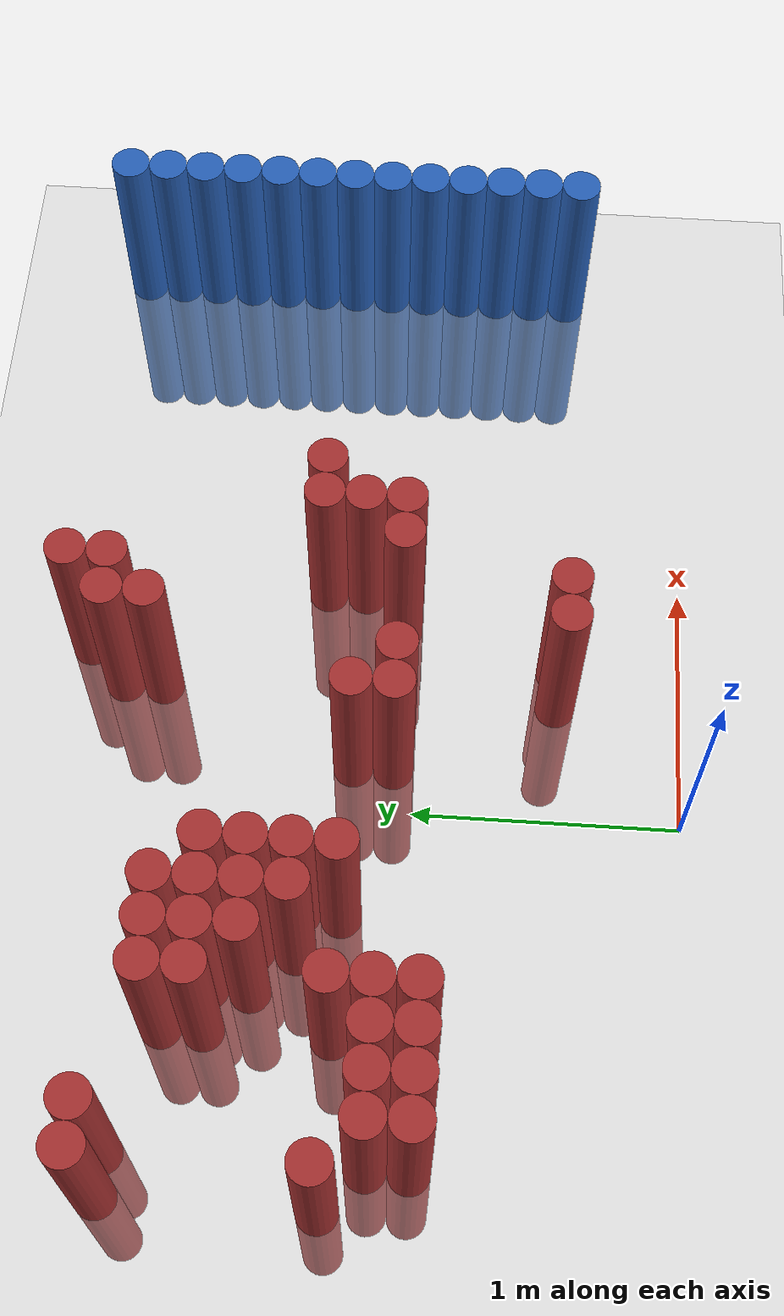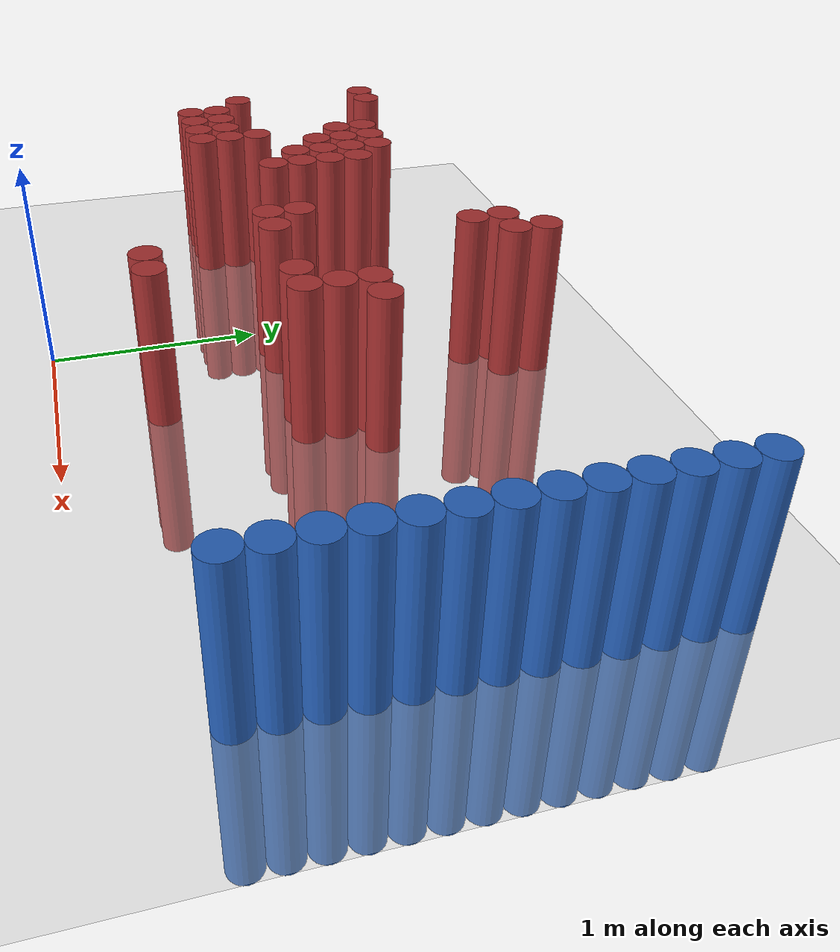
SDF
<sdf version="1.6">
 <world name="default">
  <model name="ground_plane">
   <static>1</static>
   <link name="link">
    <collision name="collision">
     <geometry><plane><normal>0 0 1</normal><size>100 100</size></plane></geometry>
     <surface><friction><ode><mu>100</mu><mu2>50</mu2></ode></friction></surface>
    </collision>
    <visual name="visual">
     <cast_shadows>0</cast_shadows>
     <geometry><plane><normal>0 0 1</normal><size>100 100</size></plane></geometry>
     <material>
      <script><uri>file://media/materials/scripts/gazebo.material</uri><name>Gazebo/Grey</name></script>
     </material>
    </visual>
   </link>
  </model>
  <model name="unit_cylinder_152">
   <static>1</static>
   <pose>-1.475000 1.225000 0.000000 0.000000 0.000000 0.000000</pose>
   <link name="link">
    <inertial>
     <mass>1</mass>
     <inertia><ixx>0.145833</ixx><ixy>0</ixy><ixz>0</ixz><iyy>0.145833</iyy><iyz>0</iyz><izz>0.125</izz></inertia>
    </inertial>
    <collision name="collision">
     <geometry><cylinder><radius>0.075000</radius><length>1.5</length></cylinder></geometry>
    </collision>
    <visual name="visual">
     <geometry><cylinder><radius>0.075000</radius><length>1.5</length></cylinder></geometry>
     <material>
      <ambient>0.648000 0.192000 0.192000 1</ambient>
      <diffuse>0.648000 0.192000 0.192000 1</diffuse>
     </material>
     <material>
      <script><name>Gazebo/Grey</name><uri>file://media/materials/scripts/gazebo.material</uri></script>
     </material>
    </visual>
   </link>
  </model>
  <model name="unit_cylinder_153">
   <static>1</static>
   <pose>-1.475000 1.975000 0.000000 0.000000 0.000000 0.000000</pose>
   <link name="link">
    <inertial>
     <mass>1</mass>
     <inertia><ixx>0.145833</ixx><ixy>0</ixy><ixz>0</ixz><iyy>0.145833</iyy><iyz>0</iyz><izz>0.125</izz></inertia>
    </inertial>
    <collision name="collision">
     <geometry><cylinder><radius>0.075000</radius><length>1.5</length></cylinder></geometry>
    </collision>
    <visual name="visual">
     <geometry><cylinder><radius>0.075000</radius><length>1.5</length></cylinder></geometry>
     <material>
      <ambient>0.648000 0.192000 0.192000 1</ambient>
      <diffuse>0.648000 0.192000 0.192000 1</diffuse>
     </material>
     <material>
      <script><name>Gazebo/Grey</name><uri>file://media/materials/scripts/gazebo.material</uri></script>
     </material>
    </visual>
   </link>
  </model>
  <model name="unit_cylinder_156">
   <static>1</static>
   <pose>-1.325000 0.925000 0.000000 0.000000 0.000000 0.000000</pose>
   <link name="link">
    <inertial>
     <mass>1</mass>
     <inertia><ixx>0.145833</ixx><ixy>0</ixy><ixz>0</ixz><iyy>0.145833</iyy><iyz>0</iyz><izz>0.125</izz></inertia>
    </inertial>
    <collision name="collision">
     <geometry><cylinder><radius>0.075000</radius><length>1.5</length></cylinder></geometry>
    </collision>
    <visual name="visual">
     <geometry><cylinder><radius>0.075000</radius><length>1.5</length></cylinder></geometry>
     <material>
      <ambient>0.648000 0.192000 0.192000 1</ambient>
      <diffuse>0.648000 0.192000 0.192000 1</diffuse>
     </material>
     <material>
      <script><name>Gazebo/Grey</name><uri>file://media/materials/scripts/gazebo.material</uri></script>
     </material>
    </visual>
   </link>
  </model>
  <model name="unit_cylinder_157">
   <static>1</static>
   <pose>-1.325000 1.075000 0.000000 0.000000 0.000000 0.000000</pose>
   <link name="link">
    <inertial>
     <mass>1</mass>
     <inertia><ixx>0.145833</ixx><ixy>0</ixy><ixz>0</ixz><iyy>0.145833</iyy><iyz>0</iyz><izz>0.125</izz></inertia>
    </inertial>
    <collision name="collision">
     <geometry><cylinder><radius>0.075000</radius><length>1.5</length></cylinder></geometry>
    </collision>
    <visual name="visual">
     <geometry><cylinder><radius>0.075000</radius><length>1.5</length></cylinder></geometry>
     <material>
      <ambient>0.648000 0.192000 0.192000 1</ambient>
      <diffuse>0.648000 0.192000 0.192000 1</diffuse>
     </material>
     <material>
      <script><name>Gazebo/Grey</name><uri>file://media/materials/scripts/gazebo.material</uri></script>
     </material>
    </visual>
   </link>
  </model>
  <model name="unit_cylinder_158">
   <static>1</static>
   <pose>-1.325000 1.975000 0.000000 0.000000 0.000000 0.000000</pose>
   <link name="link">
    <inertial>
     <mass>1</mass>
     <inertia><ixx>0.145833</ixx><ixy>0</ixy><ixz>0</ixz><iyy>0.145833</iyy><iyz>0</iyz><izz>0.125</izz></inertia>
    </inertial>
    <collision name="collision">
     <geometry><cylinder><radius>0.075000</radius><length>1.5</length></cylinder></geometry>
    </collision>
    <visual name="visual">
     <geometry><cylinder><radius>0.075000</radius><length>1.5</length></cylinder></geometry>
     <material>
      <ambient>0.648000 0.192000 0.192000 1</ambient>
      <diffuse>0.648000 0.192000 0.192000 1</diffuse>
     </material>
     <material>
      <script><name>Gazebo/Grey</name><uri>file://media/materials/scripts/gazebo.material</uri></script>
     </material>
    </visual>
   </link>
  </model>
  <model name="unit_cylinder_160">
   <static>1</static>
   <pose>-1.175000 0.925000 0.000000 0.000000 0.000000 0.000000</pose>
   <link name="link">
    <inertial>
     <mass>1</mass>
     <inertia><ixx>0.145833</ixx><ixy>0</ixy><ixz>0</ixz><iyy>0.145833</iyy><iyz>0</iyz><izz>0.125</izz></inertia>
    </inertial>
    <collision name="collision">
     <geometry><cylinder><radius>0.075000</radius><length>1.5</length></cylinder></geometry>
    </collision>
    <visual name="visual">
     <geometry><cylinder><radius>0.075000</radius><length>1.5</length></cylinder></geometry>
     <material>
      <ambient>0.648000 0.192000 0.192000 1</ambient>
      <diffuse>0.648000 0.192000 0.192000 1</diffuse>
     </material>
     <material>
      <script><name>Gazebo/Grey</name><uri>file://media/materials/scripts/gazebo.material</uri></script>
     </material>
    </visual>
   </link>
  </model>
  <model name="unit_cylinder_161">
   <static>1</static>
   <pose>-1.175000 1.075000 0.000000 0.000000 0.000000 0.000000</pose>
   <link name="link">
    <inertial>
     <mass>1</mass>
     <inertia><ixx>0.145833</ixx><ixy>0</ixy><ixz>0</ixz><iyy>0.145833</iyy><iyz>0</iyz><izz>0.125</izz></inertia>
    </inertial>
    <collision name="collision">
     <geometry><cylinder><radius>0.075000</radius><length>1.5</length></cylinder></geometry>
    </collision>
    <visual name="visual">
     <geometry><cylinder><radius>0.075000</radius><length>1.5</length></cylinder></geometry>
     <material>
      <ambient>0.648000 0.192000 0.192000 1</ambient>
      <diffuse>0.648000 0.192000 0.192000 1</diffuse>
     </material>
     <material>
      <script><name>Gazebo/Grey</name><uri>file://media/materials/scripts/gazebo.material</uri></script>
     </material>
    </visual>
   </link>
  </model>
  <model name="unit_cylinder_163">
   <static>1</static>
   <pose>-1.025000 0.925000 0.000000 0.000000 0.000000 0.000000</pose>
   <link name="link">
    <inertial>
     <mass>1</mass>
     <inertia><ixx>0.145833</ixx><ixy>0</ixy><ixz>0</ixz><iyy>0.145833</iyy><iyz>0</iyz><izz>0.125</izz></inertia>
    </inertial>
    <collision name="collision">
     <geometry><cylinder><radius>0.075000</radius><length>1.5</length></cylinder></geometry>
    </collision>
    <visual name="visual">
     <geometry><cylinder><radius>0.075000</radius><length>1.5</length></cylinder></geometry>
     <material>
      <ambient>0.648000 0.192000 0.192000 1</ambient>
      <diffuse>0.648000 0.192000 0.192000 1</diffuse>
     </material>
     <material>
      <script><name>Gazebo/Grey</name><uri>file://media/materials/scripts/gazebo.material</uri></script>
     </material>
    </visual>
   </link>
  </model>
  <model name="unit_cylinder_164">
   <static>1</static>
   <pose>-1.025000 1.075000 0.000000 0.000000 0.000000 0.000000</pose>
   <link name="link">
    <inertial>
     <mass>1</mass>
     <inertia><ixx>0.145833</ixx><ixy>0</ixy><ixz>0</ixz><iyy>0.145833</iyy><iyz>0</iyz><izz>0.125</izz></inertia>
    </inertial>
    <collision name="collision">
     <geometry><cylinder><radius>0.075000</radius><length>1.5</length></cylinder></geometry>
    </collision>
    <visual name="visual">
     <geometry><cylinder><radius>0.075000</radius><length>1.5</length></cylinder></geometry>
     <material>
      <ambient>0.648000 0.192000 0.192000 1</ambient>
      <diffuse>0.648000 0.192000 0.192000 1</diffuse>
     </material>
     <material>
      <script><name>Gazebo/Grey</name><uri>file://media/materials/scripts/gazebo.material</uri></script>
     </material>
    </visual>
   </link>
  </model>
  <model name="unit_cylinder_165">
   <static>1</static>
   <pose>-0.875000 0.925000 0.000000 0.000000 0.000000 0.000000</pose>
   <link name="link">
    <inertial>
     <mass>1</mass>
     <inertia><ixx>0.145833</ixx><ixy>0</ixy><ixz>0</ixz><iyy>0.145833</iyy><iyz>0</iyz><izz>0.125</izz></inertia>
    </inertial>
    <collision name="collision">
     <geometry><cylinder><radius>0.075000</radius><length>1.5</length></cylinder></geometry>
    </collision>
    <visual name="visual">
     <geometry><cylinder><radius>0.075000</radius><length>1.5</length></cylinder></geometry>
     <material>
      <ambient>0.648000 0.192000 0.192000 1</ambient>
      <diffuse>0.648000 0.192000 0.192000 1</diffuse>
     </material>
     <material>
      <script><name>Gazebo/Grey</name><uri>file://media/materials/scripts/gazebo.material</uri></script>
     </material>
    </visual>
   </link>
  </model>
  <model name="unit_cylinder_166">
   <static>1</static>
   <pose>-0.875000 1.075000 0.000000 0.000000 0.000000 0.000000</pose>
   <link name="link">
    <inertial>
     <mass>1</mass>
     <inertia><ixx>0.145833</ixx><ixy>0</ixy><ixz>0</ixz><iyy>0.145833</iyy><iyz>0</iyz><izz>0.125</izz></inertia>
    </inertial>
    <collision name="collision">
     <geometry><cylinder><radius>0.075000</radius><length>1.5</length></cylinder></geometry>
    </collision>
    <visual name="visual">
     <geometry><cylinder><radius>0.075000</radius><length>1.5</length></cylinder></geometry>
     <material>
      <ambient>0.648000 0.192000 0.192000 1</ambient>
      <diffuse>0.648000 0.192000 0.192000 1</diffuse>
     </material>
     <material>
      <script><name>Gazebo/Grey</name><uri>file://media/materials/scripts/gazebo.material</uri></script>
     </material>
    </visual>
   </link>
  </model>
  <model name="unit_cylinder_167">
   <static>1</static>
   <pose>-0.875000 1.225000 0.000000 0.000000 0.000000 0.000000</pose>
   <link name="link">
    <inertial>
     <mass>1</mass>
     <inertia><ixx>0.145833</ixx><ixy>0</ixy><ixz>0</ixz><iyy>0.145833</iyy><iyz>0</iyz><izz>0.125</izz></inertia>
    </inertial>
    <collision name="collision">
     <geometry><cylinder><radius>0.075000</radius><length>1.5</length></cylinder></geometry>
    </collision>
    <visual name="visual">
     <geometry><cylinder><radius>0.075000</radius><length>1.5</length></cylinder></geometry>
     <material>
      <ambient>0.648000 0.192000 0.192000 1</ambient>
      <diffuse>0.648000 0.192000 0.192000 1</diffuse>
     </material>
     <material>
      <script><name>Gazebo/Grey</name><uri>file://media/materials/scripts/gazebo.material</uri></script>
     </material>
    </visual>
   </link>
  </model>
  <model name="unit_cylinder_168">
   <static>1</static>
   <pose>-0.875000 1.675000 0.000000 0.000000 0.000000 0.000000</pose>
   <link name="link">
    <inertial>
     <mass>1</mass>
     <inertia><ixx>0.145833</ixx><ixy>0</ixy><ixz>0</ixz><iyy>0.145833</iyy><iyz>0</iyz><izz>0.125</izz></inertia>
    </inertial>
    <collision name="collision">
     <geometry><cylinder><radius>0.075000</radius><length>1.5</length></cylinder></geometry>
    </collision>
    <visual name="visual">
     <geometry><cylinder><radius>0.075000</radius><length>1.5</length></cylinder></geometry>
     <material>
      <ambient>0.648000 0.192000 0.192000 1</ambient>
      <diffuse>0.648000 0.192000 0.192000 1</diffuse>
     </material>
     <material>
      <script><name>Gazebo/Grey</name><uri>file://media/materials/scripts/gazebo.material</uri></script>
     </material>
    </visual>
   </link>
  </model>
  <model name="unit_cylinder_169">
   <static>1</static>
   <pose>-0.875000 1.825000 0.000000 0.000000 0.000000 0.000000</pose>
   <link name="link">
    <inertial>
     <mass>1</mass>
     <inertia><ixx>0.145833</ixx><ixy>0</ixy><ixz>0</ixz><iyy>0.145833</iyy><iyz>0</iyz><izz>0.125</izz></inertia>
    </inertial>
    <collision name="collision">
     <geometry><cylinder><radius>0.075000</radius><length>1.5</length></cylinder></geometry>
    </collision>
    <visual name="visual">
     <geometry><cylinder><radius>0.075000</radius><length>1.5</length></cylinder></geometry>
     <material>
      <ambient>0.648000 0.192000 0.192000 1</ambient>
      <diffuse>0.648000 0.192000 0.192000 1</diffuse>
     </material>
     <material>
      <script><name>Gazebo/Grey</name><uri>file://media/materials/scripts/gazebo.material</uri></script>
     </material>
    </visual>
   </link>
  </model>
  <model name="unit_cylinder_170">
   <static>1</static>
   <pose>-0.725000 1.525000 0.000000 0.000000 0.000000 0.000000</pose>
   <link name="link">
    <inertial>
     <mass>1</mass>
     <inertia><ixx>0.145833</ixx><ixy>0</ixy><ixz>0</ixz><iyy>0.145833</iyy><iyz>0</iyz><izz>0.125</izz></inertia>
    </inertial>
    <collision name="collision">
     <geometry><cylinder><radius>0.075000</radius><length>1.5</length></cylinder></geometry>
    </collision>
    <visual name="visual">
     <geometry><cylinder><radius>0.075000</radius><length>1.5</length></cylinder></geometry>
     <material>
      <ambient>0.648000 0.192000 0.192000 1</ambient>
      <diffuse>0.648000 0.192000 0.192000 1</diffuse>
     </material>
     <material>
      <script><name>Gazebo/Grey</name><uri>file://media/materials/scripts/gazebo.material</uri></script>
     </material>
    </visual>
   </link>
  </model>
  <model name="unit_cylinder_171">
   <static>1</static>
   <pose>-0.725000 1.675000 0.000000 0.000000 0.000000 0.000000</pose>
   <link name="link">
    <inertial>
     <mass>1</mass>
     <inertia><ixx>0.145833</ixx><ixy>0</ixy><ixz>0</ixz><iyy>0.145833</iyy><iyz>0</iyz><izz>0.125</izz></inertia>
    </inertial>
    <collision name="collision">
     <geometry><cylinder><radius>0.075000</radius><length>1.5</length></cylinder></geometry>
    </collision>
    <visual name="visual">
     <geometry><cylinder><radius>0.075000</radius><length>1.5</length></cylinder></geometry>
     <material>
      <ambient>0.648000 0.192000 0.192000 1</ambient>
      <diffuse>0.648000 0.192000 0.192000 1</diffuse>
     </material>
     <material>
      <script><name>Gazebo/Grey</name><uri>file://media/materials/scripts/gazebo.material</uri></script>
     </material>
    </visual>
   </link>
  </model>
  <model name="unit_cylinder_172">
   <static>1</static>
   <pose>-0.725000 1.825000 0.000000 0.000000 0.000000 0.000000</pose>
   <link name="link">
    <inertial>
     <mass>1</mass>
     <inertia><ixx>0.145833</ixx><ixy>0</ixy><ixz>0</ixz><iyy>0.145833</iyy><iyz>0</iyz><izz>0.125</izz></inertia>
    </inertial>
    <collision name="collision">
     <geometry><cylinder><radius>0.075000</radius><length>1.5</length></cylinder></geometry>
    </collision>
    <visual name="visual">
     <geometry><cylinder><radius>0.075000</radius><length>1.5</length></cylinder></geometry>
     <material>
      <ambient>0.648000 0.192000 0.192000 1</ambient>
      <diffuse>0.648000 0.192000 0.192000 1</diffuse>
     </material>
     <material>
      <script><name>Gazebo/Grey</name><uri>file://media/materials/scripts/gazebo.material</uri></script>
     </material>
    </visual>
   </link>
  </model>
  <model name="unit_cylinder_173">
   <static>1</static>
   <pose>-0.575000 1.375000 0.000000 0.000000 0.000000 0.000000</pose>
   <link name="link">
    <inertial>
     <mass>1</mass>
     <inertia><ixx>0.145833</ixx><ixy>0</ixy><ixz>0</ixz><iyy>0.145833</iyy><iyz>0</iyz><izz>0.125</izz></inertia>
    </inertial>
    <collision name="collision">
     <geometry><cylinder><radius>0.075000</radius><length>1.5</length></cylinder></geometry>
    </collision>
    <visual name="visual">
     <geometry><cylinder><radius>0.075000</radius><length>1.5</length></cylinder></geometry>
     <material>
      <ambient>0.648000 0.192000 0.192000 1</ambient>
      <diffuse>0.648000 0.192000 0.192000 1</diffuse>
     </material>
     <material>
      <script><name>Gazebo/Grey</name><uri>file://media/materials/scripts/gazebo.material</uri></script>
     </material>
    </visual>
   </link>
  </model>
  <model name="unit_cylinder_174">
   <static>1</static>
   <pose>-0.575000 1.525000 0.000000 0.000000 0.000000 0.000000</pose>
   <link name="link">
    <inertial>
     <mass>1</mass>
     <inertia><ixx>0.145833</ixx><ixy>0</ixy><ixz>0</ixz><iyy>0.145833</iyy><iyz>0</iyz><izz>0.125</izz></inertia>
    </inertial>
    <collision name="collision">
     <geometry><cylinder><radius>0.075000</radius><length>1.5</length></cylinder></geometry>
    </collision>
    <visual name="visual">
     <geometry><cylinder><radius>0.075000</radius><length>1.5</length></cylinder></geometry>
     <material>
      <ambient>0.648000 0.192000 0.192000 1</ambient>
      <diffuse>0.648000 0.192000 0.192000 1</diffuse>
     </material>
     <material>
      <script><name>Gazebo/Grey</name><uri>file://media/materials/scripts/gazebo.material</uri></script>
     </material>
    </visual>
   </link>
  </model>
  <model name="unit_cylinder_175">
   <static>1</static>
   <pose>-0.575000 1.675000 0.000000 0.000000 0.000000 0.000000</pose>
   <link name="link">
    <inertial>
     <mass>1</mass>
     <inertia><ixx>0.145833</ixx><ixy>0</ixy><ixz>0</ixz><iyy>0.145833</iyy><iyz>0</iyz><izz>0.125</izz></inertia>
    </inertial>
    <collision name="collision">
     <geometry><cylinder><radius>0.075000</radius><length>1.5</length></cylinder></geometry>
    </collision>
    <visual name="visual">
     <geometry><cylinder><radius>0.075000</radius><length>1.5</length></cylinder></geometry>
     <material>
      <ambient>0.648000 0.192000 0.192000 1</ambient>
      <diffuse>0.648000 0.192000 0.192000 1</diffuse>
     </material>
     <material>
      <script><name>Gazebo/Grey</name><uri>file://media/materials/scripts/gazebo.material</uri></script>
     </material>
    </visual>
   </link>
  </model>
  <model name="unit_cylinder_176">
   <static>1</static>
   <pose>-0.575000 1.825000 0.000000 0.000000 0.000000 0.000000</pose>
   <link name="link">
    <inertial>
     <mass>1</mass>
     <inertia><ixx>0.145833</ixx><ixy>0</ixy><ixz>0</ixz><iyy>0.145833</iyy><iyz>0</iyz><izz>0.125</izz></inertia>
    </inertial>
    <collision name="collision">
     <geometry><cylinder><radius>0.075000</radius><length>1.5</length></cylinder></geometry>
    </collision>
    <visual name="visual">
     <geometry><cylinder><radius>0.075000</radius><length>1.5</length></cylinder></geometry>
     <material>
      <ambient>0.648000 0.192000 0.192000 1</ambient>
      <diffuse>0.648000 0.192000 0.192000 1</diffuse>
     </material>
     <material>
      <script><name>Gazebo/Grey</name><uri>file://media/materials/scripts/gazebo.material</uri></script>
     </material>
    </visual>
   </link>
  </model>
  <model name="unit_cylinder_181">
   <static>1</static>
   <pose>-0.425000 1.225000 0.000000 0.000000 0.000000 0.000000</pose>
   <link name="link">
    <inertial>
     <mass>1</mass>
     <inertia><ixx>0.145833</ixx><ixy>0</ixy><ixz>0</ixz><iyy>0.145833</iyy><iyz>0</iyz><izz>0.125</izz></inertia>
    </inertial>
    <collision name="collision">
     <geometry><cylinder><radius>0.075000</radius><length>1.5</length></cylinder></geometry>
    </collision>
    <visual name="visual">
     <geometry><cylinder><radius>0.075000</radius><length>1.5</length></cylinder></geometry>
     <material>
      <ambient>0.648000 0.192000 0.192000 1</ambient>
      <diffuse>0.648000 0.192000 0.192000 1</diffuse>
     </material>
     <material>
      <script><name>Gazebo/Grey</name><uri>file://media/materials/scripts/gazebo.material</uri></script>
     </material>
    </visual>
   </link>
  </model>
  <model name="unit_cylinder_182">
   <static>1</static>
   <pose>-0.425000 1.375000 0.000000 0.000000 0.000000 0.000000</pose>
   <link name="link">
    <inertial>
     <mass>1</mass>
     <inertia><ixx>0.145833</ixx><ixy>0</ixy><ixz>0</ixz><iyy>0.145833</iyy><iyz>0</iyz><izz>0.125</izz></inertia>
    </inertial>
    <collision name="collision">
     <geometry><cylinder><radius>0.075000</radius><length>1.5</length></cylinder></geometry>
    </collision>
    <visual name="visual">
     <geometry><cylinder><radius>0.075000</radius><length>1.5</length></cylinder></geometry>
     <material>
      <ambient>0.648000 0.192000 0.192000 1</ambient>
      <diffuse>0.648000 0.192000 0.192000 1</diffuse>
     </material>
     <material>
      <script><name>Gazebo/Grey</name><uri>file://media/materials/scripts/gazebo.material</uri></script>
     </material>
    </visual>
   </link>
  </model>
  <model name="unit_cylinder_183">
   <static>1</static>
   <pose>-0.425000 1.525000 0.000000 0.000000 0.000000 0.000000</pose>
   <link name="link">
    <inertial>
     <mass>1</mass>
     <inertia><ixx>0.145833</ixx><ixy>0</ixy><ixz>0</ixz><iyy>0.145833</iyy><iyz>0</iyz><izz>0.125</izz></inertia>
    </inertial>
    <collision name="collision">
     <geometry><cylinder><radius>0.075000</radius><length>1.5</length></cylinder></geometry>
    </collision>
    <visual name="visual">
     <geometry><cylinder><radius>0.075000</radius><length>1.5</length></cylinder></geometry>
     <material>
      <ambient>0.648000 0.192000 0.192000 1</ambient>
      <diffuse>0.648000 0.192000 0.192000 1</diffuse>
     </material>
     <material>
      <script><name>Gazebo/Grey</name><uri>file://media/materials/scripts/gazebo.material</uri></script>
     </material>
    </visual>
   </link>
  </model>
  <model name="unit_cylinder_184">
   <static>1</static>
   <pose>-0.425000 1.675000 0.000000 0.000000 0.000000 0.000000</pose>
   <link name="link">
    <inertial>
     <mass>1</mass>
     <inertia><ixx>0.145833</ixx><ixy>0</ixy><ixz>0</ixz><iyy>0.145833</iyy><iyz>0</iyz><izz>0.125</izz></inertia>
    </inertial>
    <collision name="collision">
     <geometry><cylinder><radius>0.075000</radius><length>1.5</length></cylinder></geometry>
    </collision>
    <visual name="visual">
     <geometry><cylinder><radius>0.075000</radius><length>1.5</length></cylinder></geometry>
     <material>
      <ambient>0.648000 0.192000 0.192000 1</ambient>
      <diffuse>0.648000 0.192000 0.192000 1</diffuse>
     </material>
     <material>
      <script><name>Gazebo/Grey</name><uri>file://media/materials/scripts/gazebo.material</uri></script>
     </material>
    </visual>
   </link>
  </model>
  <model name="unit_cylinder_195">
   <static>1</static>
   <pose>0.175000 1.075000 0.000000 0.000000 0.000000 0.000000</pose>
   <link name="link">
    <inertial>
     <mass>1</mass>
     <inertia><ixx>0.145833</ixx><ixy>0</ixy><ixz>0</ixz><iyy>0.145833</iyy><iyz>0</iyz><izz>0.125</izz></inertia>
    </inertial>
    <collision name="collision">
     <geometry><cylinder><radius>0.075000</radius><length>1.5</length></cylinder></geometry>
    </collision>
    <visual name="visual">
     <geometry><cylinder><radius>0.075000</radius><length>1.5</length></cylinder></geometry>
     <material>
      <ambient>0.648000 0.192000 0.192000 1</ambient>
      <diffuse>0.648000 0.192000 0.192000 1</diffuse>
     </material>
     <material>
      <script><name>Gazebo/Grey</name><uri>file://media/materials/scripts/gazebo.material</uri></script>
     </material>
    </visual>
   </link>
  </model>
  <model name="unit_cylinder_196">
   <static>1</static>
   <pose>0.175000 1.225000 0.000000 0.000000 0.000000 0.000000</pose>
   <link name="link">
    <inertial>
     <mass>1</mass>
     <inertia><ixx>0.145833</ixx><ixy>0</ixy><ixz>0</ixz><iyy>0.145833</iyy><iyz>0</iyz><izz>0.125</izz></inertia>
    </inertial>
    <collision name="collision">
     <geometry><cylinder><radius>0.075000</radius><length>1.5</length></cylinder></geometry>
    </collision>
    <visual name="visual">
     <geometry><cylinder><radius>0.075000</radius><length>1.5</length></cylinder></geometry>
     <material>
      <ambient>0.648000 0.192000 0.192000 1</ambient>
      <diffuse>0.648000 0.192000 0.192000 1</diffuse>
     </material>
     <material>
      <script><name>Gazebo/Grey</name><uri>file://media/materials/scripts/gazebo.material</uri></script>
     </material>
    </visual>
   </link>
  </model>
  <model name="unit_cylinder_199">
   <static>1</static>
   <pose>0.325000 1.075000 0.000000 0.000000 0.000000 0.000000</pose>
   <link name="link">
    <inertial>
     <mass>1</mass>
     <inertia><ixx>0.145833</ixx><ixy>0</ixy><ixz>0</ixz><iyy>0.145833</iyy><iyz>0</iyz><izz>0.125</izz></inertia>
    </inertial>
    <collision name="collision">
     <geometry><cylinder><radius>0.075000</radius><length>1.5</length></cylinder></geometry>
    </collision>
    <visual name="visual">
     <geometry><cylinder><radius>0.075000</radius><length>1.5</length></cylinder></geometry>
     <material>
      <ambient>0.648000 0.192000 0.192000 1</ambient>
      <diffuse>0.648000 0.192000 0.192000 1</diffuse>
     </material>
     <material>
      <script><name>Gazebo/Grey</name><uri>file://media/materials/scripts/gazebo.material</uri></script>
     </material>
    </visual>
   </link>
  </model>
  <model name="unit_cylinder_201">
   <static>1</static>
   <pose>0.475000 0.475000 0.000000 0.000000 0.000000 0.000000</pose>
   <link name="link">
    <inertial>
     <mass>1</mass>
     <inertia><ixx>0.145833</ixx><ixy>0</ixy><ixz>0</ixz><iyy>0.145833</iyy><iyz>0</iyz><izz>0.125</izz></inertia>
    </inertial>
    <collision name="collision">
     <geometry><cylinder><radius>0.075000</radius><length>1.5</length></cylinder></geometry>
    </collision>
    <visual name="visual">
     <geometry><cylinder><radius>0.075000</radius><length>1.5</length></cylinder></geometry>
     <material>
      <ambient>0.648000 0.192000 0.192000 1</ambient>
      <diffuse>0.648000 0.192000 0.192000 1</diffuse>
     </material>
     <material>
      <script><name>Gazebo/Grey</name><uri>file://media/materials/scripts/gazebo.material</uri></script>
     </material>
    </visual>
   </link>
  </model>
  <model name="unit_cylinder_202">
   <static>1</static>
   <pose>0.475000 1.975000 0.000000 0.000000 0.000000 0.000000</pose>
   <link name="link">
    <inertial>
     <mass>1</mass>
     <inertia><ixx>0.145833</ixx><ixy>0</ixy><ixz>0</ixz><iyy>0.145833</iyy><iyz>0</iyz><izz>0.125</izz></inertia>
    </inertial>
    <collision name="collision">
     <geometry><cylinder><radius>0.075000</radius><length>1.5</length></cylinder></geometry>
    </collision>
    <visual name="visual">
     <geometry><cylinder><radius>0.075000</radius><length>1.5</length></cylinder></geometry>
     <material>
      <ambient>0.648000 0.192000 0.192000 1</ambient>
      <diffuse>0.648000 0.192000 0.192000 1</diffuse>
     </material>
     <material>
      <script><name>Gazebo/Grey</name><uri>file://media/materials/scripts/gazebo.material</uri></script>
     </material>
    </visual>
   </link>
  </model>
  <model name="unit_cylinder_203">
   <static>1</static>
   <pose>0.475000 2.125000 0.000000 0.000000 0.000000 0.000000</pose>
   <link name="link">
    <inertial>
     <mass>1</mass>
     <inertia><ixx>0.145833</ixx><ixy>0</ixy><ixz>0</ixz><iyy>0.145833</iyy><iyz>0</iyz><izz>0.125</izz></inertia>
    </inertial>
    <collision name="collision">
     <geometry><cylinder><radius>0.075000</radius><length>1.5</length></cylinder></geometry>
    </collision>
    <visual name="visual">
     <geometry><cylinder><radius>0.075000</radius><length>1.5</length></cylinder></geometry>
     <material>
      <ambient>0.648000 0.192000 0.192000 1</ambient>
      <diffuse>0.648000 0.192000 0.192000 1</diffuse>
     </material>
     <material>
      <script><name>Gazebo/Grey</name><uri>file://media/materials/scripts/gazebo.material</uri></script>
     </material>
    </visual>
   </link>
  </model>
  <model name="unit_cylinder_205">
   <static>1</static>
   <pose>0.625000 0.475000 0.000000 0.000000 0.000000 0.000000</pose>
   <link name="link">
    <inertial>
     <mass>1</mass>
     <inertia><ixx>0.145833</ixx><ixy>0</ixy><ixz>0</ixz><iyy>0.145833</iyy><iyz>0</iyz><izz>0.125</izz></inertia>
    </inertial>
    <collision name="collision">
     <geometry><cylinder><radius>0.075000</radius><length>1.5</length></cylinder></geometry>
    </collision>
    <visual name="visual">
     <geometry><cylinder><radius>0.075000</radius><length>1.5</length></cylinder></geometry>
     <material>
      <ambient>0.648000 0.192000 0.192000 1</ambient>
      <diffuse>0.648000 0.192000 0.192000 1</diffuse>
     </material>
     <material>
      <script><name>Gazebo/Grey</name><uri>file://media/materials/scripts/gazebo.material</uri></script>
     </material>
    </visual>
   </link>
  </model>
  <model name="unit_cylinder_206">
   <static>1</static>
   <pose>0.625000 2.125000 0.000000 0.000000 0.000000 0.000000</pose>
   <link name="link">
    <inertial>
     <mass>1</mass>
     <inertia><ixx>0.145833</ixx><ixy>0</ixy><ixz>0</ixz><iyy>0.145833</iyy><iyz>0</iyz><izz>0.125</izz></inertia>
    </inertial>
    <collision name="collision">
     <geometry><cylinder><radius>0.075000</radius><length>1.5</length></cylinder></geometry>
    </collision>
    <visual name="visual">
     <geometry><cylinder><radius>0.075000</radius><length>1.5</length></cylinder></geometry>
     <material>
      <ambient>0.648000 0.192000 0.192000 1</ambient>
      <diffuse>0.648000 0.192000 0.192000 1</diffuse>
     </material>
     <material>
      <script><name>Gazebo/Grey</name><uri>file://media/materials/scripts/gazebo.material</uri></script>
     </material>
    </visual>
   </link>
  </model>
  <model name="unit_cylinder_207">
   <static>1</static>
   <pose>0.625000 2.275000 0.000000 0.000000 0.000000 0.000000</pose>
   <link name="link">
    <inertial>
     <mass>1</mass>
     <inertia><ixx>0.145833</ixx><ixy>0</ixy><ixz>0</ixz><iyy>0.145833</iyy><iyz>0</iyz><izz>0.125</izz></inertia>
    </inertial>
    <collision name="collision">
     <geometry><cylinder><radius>0.075000</radius><length>1.5</length></cylinder></geometry>
    </collision>
    <visual name="visual">
     <geometry><cylinder><radius>0.075000</radius><length>1.5</length></cylinder></geometry>
     <material>
      <ambient>0.648000 0.192000 0.192000 1</ambient>
      <diffuse>0.648000 0.192000 0.192000 1</diffuse>
     </material>
     <material>
      <script><name>Gazebo/Grey</name><uri>file://media/materials/scripts/gazebo.material</uri></script>
     </material>
    </visual>
   </link>
  </model>
  <model name="unit_cylinder_212">
   <static>1</static>
   <pose>0.775000 1.075000 0.000000 0.000000 0.000000 0.000000</pose>
   <link name="link">
    <inertial>
     <mass>1</mass>
     <inertia><ixx>0.145833</ixx><ixy>0</ixy><ixz>0</ixz><iyy>0.145833</iyy><iyz>0</iyz><izz>0.125</izz></inertia>
    </inertial>
    <collision name="collision">
     <geometry><cylinder><radius>0.075000</radius><length>1.5</length></cylinder></geometry>
    </collision>
    <visual name="visual">
     <geometry><cylinder><radius>0.075000</radius><length>1.5</length></cylinder></geometry>
     <material>
      <ambient>0.648000 0.192000 0.192000 1</ambient>
      <diffuse>0.648000 0.192000 0.192000 1</diffuse>
     </material>
     <material>
      <script><name>Gazebo/Grey</name><uri>file://media/materials/scripts/gazebo.material</uri></script>
     </material>
    </visual>
   </link>
  </model>
  <model name="unit_cylinder_217">
   <static>1</static>
   <pose>0.925000 1.075000 0.000000 0.000000 0.000000 0.000000</pose>
   <link name="link">
    <inertial>
     <mass>1</mass>
     <inertia><ixx>0.145833</ixx><ixy>0</ixy><ixz>0</ixz><iyy>0.145833</iyy><iyz>0</iyz><izz>0.125</izz></inertia>
    </inertial>
    <collision name="collision">
     <geometry><cylinder><radius>0.075000</radius><length>1.5</length></cylinder></geometry>
    </collision>
    <visual name="visual">
     <geometry><cylinder><radius>0.075000</radius><length>1.5</length></cylinder></geometry>
     <material>
      <ambient>0.648000 0.192000 0.192000 1</ambient>
      <diffuse>0.648000 0.192000 0.192000 1</diffuse>
     </material>
     <material>
      <script><name>Gazebo/Grey</name><uri>file://media/materials/scripts/gazebo.material</uri></script>
     </material>
    </visual>
   </link>
  </model>
  <model name="unit_cylinder_218">
   <static>1</static>
   <pose>0.925000 1.225000 0.000000 0.000000 0.000000 0.000000</pose>
   <link name="link">
    <inertial>
     <mass>1</mass>
     <inertia><ixx>0.145833</ixx><ixy>0</ixy><ixz>0</ixz><iyy>0.145833</iyy><iyz>0</iyz><izz>0.125</izz></inertia>
    </inertial>
    <collision name="collision">
     <geometry><cylinder><radius>0.075000</radius><length>1.5</length></cylinder></geometry>
    </collision>
    <visual name="visual">
     <geometry><cylinder><radius>0.075000</radius><length>1.5</length></cylinder></geometry>
     <material>
      <ambient>0.648000 0.192000 0.192000 1</ambient>
      <diffuse>0.648000 0.192000 0.192000 1</diffuse>
     </material>
     <material>
      <script><name>Gazebo/Grey</name><uri>file://media/materials/scripts/gazebo.material</uri></script>
     </material>
    </visual>
   </link>
  </model>
  <model name="unit_cylinder_219">
   <static>1</static>
   <pose>0.925000 1.375000 0.000000 0.000000 0.000000 0.000000</pose>
   <link name="link">
    <inertial>
     <mass>1</mass>
     <inertia><ixx>0.145833</ixx><ixy>0</ixy><ixz>0</ixz><iyy>0.145833</iyy><iyz>0</iyz><izz>0.125</izz></inertia>
    </inertial>
    <collision name="collision">
     <geometry><cylinder><radius>0.075000</radius><length>1.5</length></cylinder></geometry>
    </collision>
    <visual name="visual">
     <geometry><cylinder><radius>0.075000</radius><length>1.5</length></cylinder></geometry>
     <material>
      <ambient>0.648000 0.192000 0.192000 1</ambient>
      <diffuse>0.648000 0.192000 0.192000 1</diffuse>
     </material>
     <material>
      <script><name>Gazebo/Grey</name><uri>file://media/materials/scripts/gazebo.material</uri></script>
     </material>
    </visual>
   </link>
  </model>
  <model name="unit_cylinder_225">
   <static>1</static>
   <pose>1.075000 1.375000 0.000000 0.000000 0.000000 0.000000</pose>
   <link name="link">
    <inertial>
     <mass>1</mass>
     <inertia><ixx>0.145833</ixx><ixy>0</ixy><ixz>0</ixz><iyy>0.145833</iyy><iyz>0</iyz><izz>0.125</izz></inertia>
    </inertial>
    <collision name="collision">
     <geometry><cylinder><radius>0.075000</radius><length>1.5</length></cylinder></geometry>
    </collision>
    <visual name="visual">
     <geometry><cylinder><radius>0.075000</radius><length>1.5</length></cylinder></geometry>
     <material>
      <ambient>0.648000 0.192000 0.192000 1</ambient>
      <diffuse>0.648000 0.192000 0.192000 1</diffuse>
     </material>
     <material>
      <script><name>Gazebo/Grey</name><uri>file://media/materials/scripts/gazebo.material</uri></script>
     </material>
    </visual>
   </link>
  </model>
  <model name="unit_cylinder_234">
   <static>1</static>
   <pose>2.425000 0.475000 0.000000 0.000000 0.000000 0.000000</pose>
   <link name="link">
    <inertial>
     <mass>1</mass>
     <inertia><ixx>0.145833</ixx><ixy>0</ixy><ixz>0</ixz><iyy>0.145833</iyy><iyz>0</iyz><izz>0.125</izz></inertia>
    </inertial>
    <collision name="collision">
     <geometry><cylinder><radius>0.075000</radius><length>1.5</length></cylinder></geometry>
    </collision>
    <visual name="visual">
     <geometry><cylinder><radius>0.075000</radius><length>1.5</length></cylinder></geometry>
     <material>
      <ambient>0.152000 0.379000 0.720000 1</ambient>
      <diffuse>0.152000 0.379000 0.720000 1</diffuse>
     </material>
     <material>
      <script><name>Gazebo/Grey</name><uri>file://media/materials/scripts/gazebo.material</uri></script>
     </material>
    </visual>
   </link>
  </model>
  <model name="unit_cylinder_235">
   <static>1</static>
   <pose>2.425000 0.625000 0.000000 0.000000 0.000000 0.000000</pose>
   <link name="link">
    <inertial>
     <mass>1</mass>
     <inertia><ixx>0.145833</ixx><ixy>0</ixy><ixz>0</ixz><iyy>0.145833</iyy><iyz>0</iyz><izz>0.125</izz></inertia>
    </inertial>
    <collision name="collision">
     <geometry><cylinder><radius>0.075000</radius><length>1.5</length></cylinder></geometry>
    </collision>
    <visual name="visual">
     <geometry><cylinder><radius>0.075000</radius><length>1.5</length></cylinder></geometry>
     <material>
      <ambient>0.152000 0.379000 0.720000 1</ambient>
      <diffuse>0.152000 0.379000 0.720000 1</diffuse>
     </material>
     <material>
      <script><name>Gazebo/Grey</name><uri>file://media/materials/scripts/gazebo.material</uri></script>
     </material>
    </visual>
   </link>
  </model>
  <model name="unit_cylinder_236">
   <static>1</static>
   <pose>2.425000 0.775000 0.000000 0.000000 0.000000 0.000000</pose>
   <link name="link">
    <inertial>
     <mass>1</mass>
     <inertia><ixx>0.145833</ixx><ixy>0</ixy><ixz>0</ixz><iyy>0.145833</iyy><iyz>0</iyz><izz>0.125</izz></inertia>
    </inertial>
    <collision name="collision">
     <geometry><cylinder><radius>0.075000</radius><length>1.5</length></cylinder></geometry>
    </collision>
    <visual name="visual">
     <geometry><cylinder><radius>0.075000</radius><length>1.5</length></cylinder></geometry>
     <material>
      <ambient>0.152000 0.379000 0.720000 1</ambient>
      <diffuse>0.152000 0.379000 0.720000 1</diffuse>
     </material>
     <material>
      <script><name>Gazebo/Grey</name><uri>file://media/materials/scripts/gazebo.material</uri></script>
     </material>
    </visual>
   </link>
  </model>
  <model name="unit_cylinder_237">
   <static>1</static>
   <pose>2.425000 0.925000 0.000000 0.000000 0.000000 0.000000</pose>
   <link name="link">
    <inertial>
     <mass>1</mass>
     <inertia><ixx>0.145833</ixx><ixy>0</ixy><ixz>0</ixz><iyy>0.145833</iyy><iyz>0</iyz><izz>0.125</izz></inertia>
    </inertial>
    <collision name="collision">
     <geometry><cylinder><radius>0.075000</radius><length>1.5</length></cylinder></geometry>
    </collision>
    <visual name="visual">
     <geometry><cylinder><radius>0.075000</radius><length>1.5</length></cylinder></geometry>
     <material>
      <ambient>0.152000 0.379000 0.720000 1</ambient>
      <diffuse>0.152000 0.379000 0.720000 1</diffuse>
     </material>
     <material>
      <script><name>Gazebo/Grey</name><uri>file://media/materials/scripts/gazebo.material</uri></script>
     </material>
    </visual>
   </link>
  </model>
  <model name="unit_cylinder_238">
   <static>1</static>
   <pose>2.425000 1.075000 0.000000 0.000000 0.000000 0.000000</pose>
   <link name="link">
    <inertial>
     <mass>1</mass>
     <inertia><ixx>0.145833</ixx><ixy>0</ixy><ixz>0</ixz><iyy>0.145833</iyy><iyz>0</iyz><izz>0.125</izz></inertia>
    </inertial>
    <collision name="collision">
     <geometry><cylinder><radius>0.075000</radius><length>1.5</length></cylinder></geometry>
    </collision>
    <visual name="visual">
     <geometry><cylinder><radius>0.075000</radius><length>1.5</length></cylinder></geometry>
     <material>
      <ambient>0.152000 0.379000 0.720000 1</ambient>
      <diffuse>0.152000 0.379000 0.720000 1</diffuse>
     </material>
     <material>
      <script><name>Gazebo/Grey</name><uri>file://media/materials/scripts/gazebo.material</uri></script>
     </material>
    </visual>
   </link>
  </model>
  <model name="unit_cylinder_239">
   <static>1</static>
   <pose>2.425000 1.225000 0.000000 0.000000 0.000000 0.000000</pose>
   <link name="link">
    <inertial>
     <mass>1</mass>
     <inertia><ixx>0.145833</ixx><ixy>0</ixy><ixz>0</ixz><iyy>0.145833</iyy><iyz>0</iyz><izz>0.125</izz></inertia>
    </inertial>
    <collision name="collision">
     <geometry><cylinder><radius>0.075000</radius><length>1.5</length></cylinder></geometry>
    </collision>
    <visual name="visual">
     <geometry><cylinder><radius>0.075000</radius><length>1.5</length></cylinder></geometry>
     <material>
      <ambient>0.152000 0.379000 0.720000 1</ambient>
      <diffuse>0.152000 0.379000 0.720000 1</diffuse>
     </material>
     <material>
      <script><name>Gazebo/Grey</name><uri>file://media/materials/scripts/gazebo.material</uri></script>
     </material>
    </visual>
   </link>
  </model>
  <model name="unit_cylinder_240">
   <static>1</static>
   <pose>2.425000 1.375000 0.000000 0.000000 0.000000 0.000000</pose>
   <link name="link">
    <inertial>
     <mass>1</mass>
     <inertia><ixx>0.145833</ixx><ixy>0</ixy><ixz>0</ixz><iyy>0.145833</iyy><iyz>0</iyz><izz>0.125</izz></inertia>
    </inertial>
    <collision name="collision">
     <geometry><cylinder><radius>0.075000</radius><length>1.5</length></cylinder></geometry>
    </collision>
    <visual name="visual">
     <geometry><cylinder><radius>0.075000</radius><length>1.5</length></cylinder></geometry>
     <material>
      <ambient>0.152000 0.379000 0.720000 1</ambient>
      <diffuse>0.152000 0.379000 0.720000 1</diffuse>
     </material>
     <material>
      <script><name>Gazebo/Grey</name><uri>file://media/materials/scripts/gazebo.material</uri></script>
     </material>
    </visual>
   </link>
  </model>
  <model name="unit_cylinder_241">
   <static>1</static>
   <pose>2.425000 1.525000 0.000000 0.000000 0.000000 0.000000</pose>
   <link name="link">
    <inertial>
     <mass>1</mass>
     <inertia><ixx>0.145833</ixx><ixy>0</ixy><ixz>0</ixz><iyy>0.145833</iyy><iyz>0</iyz><izz>0.125</izz></inertia>
    </inertial>
    <collision name="collision">
     <geometry><cylinder><radius>0.075000</radius><length>1.5</length></cylinder></geometry>
    </collision>
    <visual name="visual">
     <geometry><cylinder><radius>0.075000</radius><length>1.5</length></cylinder></geometry>
     <material>
      <ambient>0.152000 0.379000 0.720000 1</ambient>
      <diffuse>0.152000 0.379000 0.720000 1</diffuse>
     </material>
     <material>
      <script><name>Gazebo/Grey</name><uri>file://media/materials/scripts/gazebo.material</uri></script>
     </material>
    </visual>
   </link>
  </model>
  <model name="unit_cylinder_242">
   <static>1</static>
   <pose>2.425000 1.675000 0.000000 0.000000 0.000000 0.000000</pose>
   <link name="link">
    <inertial>
     <mass>1</mass>
     <inertia><ixx>0.145833</ixx><ixy>0</ixy><ixz>0</ixz><iyy>0.145833</iyy><iyz>0</iyz><izz>0.125</izz></inertia>
    </inertial>
    <collision name="collision">
     <geometry><cylinder><radius>0.075000</radius><length>1.5</length></cylinder></geometry>
    </collision>
    <visual name="visual">
     <geometry><cylinder><radius>0.075000</radius><length>1.5</length></cylinder></geometry>
     <material>
      <ambient>0.152000 0.379000 0.720000 1</ambient>
      <diffuse>0.152000 0.379000 0.720000 1</diffuse>
     </material>
     <material>
      <script><name>Gazebo/Grey</name><uri>file://media/materials/scripts/gazebo.material</uri></script>
     </material>
    </visual>
   </link>
  </model>
  <model name="unit_cylinder_243">
   <static>1</static>
   <pose>2.425000 1.825000 0.000000 0.000000 0.000000 0.000000</pose>
   <link name="link">
    <inertial>
     <mass>1</mass>
     <inertia><ixx>0.145833</ixx><ixy>0</ixy><ixz>0</ixz><iyy>0.145833</iyy><iyz>0</iyz><izz>0.125</izz></inertia>
    </inertial>
    <collision name="collision">
     <geometry><cylinder><radius>0.075000</radius><length>1.5</length></cylinder></geometry>
    </collision>
    <visual name="visual">
     <geometry><cylinder><radius>0.075000</radius><length>1.5</length></cylinder></geometry>
     <material>
      <ambient>0.152000 0.379000 0.720000 1</ambient>
      <diffuse>0.152000 0.379000 0.720000 1</diffuse>
     </material>
     <material>
      <script><name>Gazebo/Grey</name><uri>file://media/materials/scripts/gazebo.material</uri></script>
     </material>
    </visual>
   </link>
  </model>
  <model name="unit_cylinder_244">
   <static>1</static>
   <pose>2.425000 1.975000 0.000000 0.000000 0.000000 0.000000</pose>
   <link name="link">
    <inertial>
     <mass>1</mass>
     <inertia><ixx>0.145833</ixx><ixy>0</ixy><ixz>0</ixz><iyy>0.145833</iyy><iyz>0</iyz><izz>0.125</izz></inertia>
    </inertial>
    <collision name="collision">
     <geometry><cylinder><radius>0.075000</radius><length>1.5</length></cylinder></geometry>
    </collision>
    <visual name="visual">
     <geometry><cylinder><radius>0.075000</radius><length>1.5</length></cylinder></geometry>
     <material>
      <ambient>0.152000 0.379000 0.720000 1</ambient>
      <diffuse>0.152000 0.379000 0.720000 1</diffuse>
     </material>
     <material>
      <script><name>Gazebo/Grey</name><uri>file://media/materials/scripts/gazebo.material</uri></script>
     </material>
    </visual>
   </link>
  </model>
  <model name="unit_cylinder_245">
   <static>1</static>
   <pose>2.425000 2.125000 0.000000 0.000000 0.000000 0.000000</pose>
   <link name="link">
    <inertial>
     <mass>1</mass>
     <inertia><ixx>0.145833</ixx><ixy>0</ixy><ixz>0</ixz><iyy>0.145833</iyy><iyz>0</iyz><izz>0.125</izz></inertia>
    </inertial>
    <collision name="collision">
     <geometry><cylinder><radius>0.075000</radius><length>1.5</length></cylinder></geometry>
    </collision>
    <visual name="visual">
     <geometry><cylinder><radius>0.075000</radius><length>1.5</length></cylinder></geometry>
     <material>
      <ambient>0.152000 0.379000 0.720000 1</ambient>
      <diffuse>0.152000 0.379000 0.720000 1</diffuse>
     </material>
     <material>
      <script><name>Gazebo/Grey</name><uri>file://media/materials/scripts/gazebo.material</uri></script>
     </material>
    </visual>
   </link>
  </model>
  <model name="unit_cylinder_246">
   <static>1</static>
   <pose>2.425000 2.275000 0.000000 0.000000 0.000000 0.000000</pose>
   <link name="link">
    <inertial>
     <mass>1</mass>
     <inertia><ixx>0.145833</ixx><ixy>0</ixy><ixz>0</ixz><iyy>0.145833</iyy><iyz>0</iyz><izz>0.125</izz></inertia>
    </inertial>
    <collision name="collision">
     <geometry><cylinder><radius>0.075000</radius><length>1.5</length></cylinder></geometry>
    </collision>
    <visual name="visual">
     <geometry><cylinder><radius>0.075000</radius><length>1.5</length></cylinder></geometry>
     <material>
      <ambient>0.152000 0.379000 0.720000 1</ambient>
      <diffuse>0.152000 0.379000 0.720000 1</diffuse>
     </material>
     <material>
      <script><name>Gazebo/Grey</name><uri>file://media/materials/scripts/gazebo.material</uri></script>
     </material>
    </visual>
   </link>
  </model>
 </world>
</sdf>
